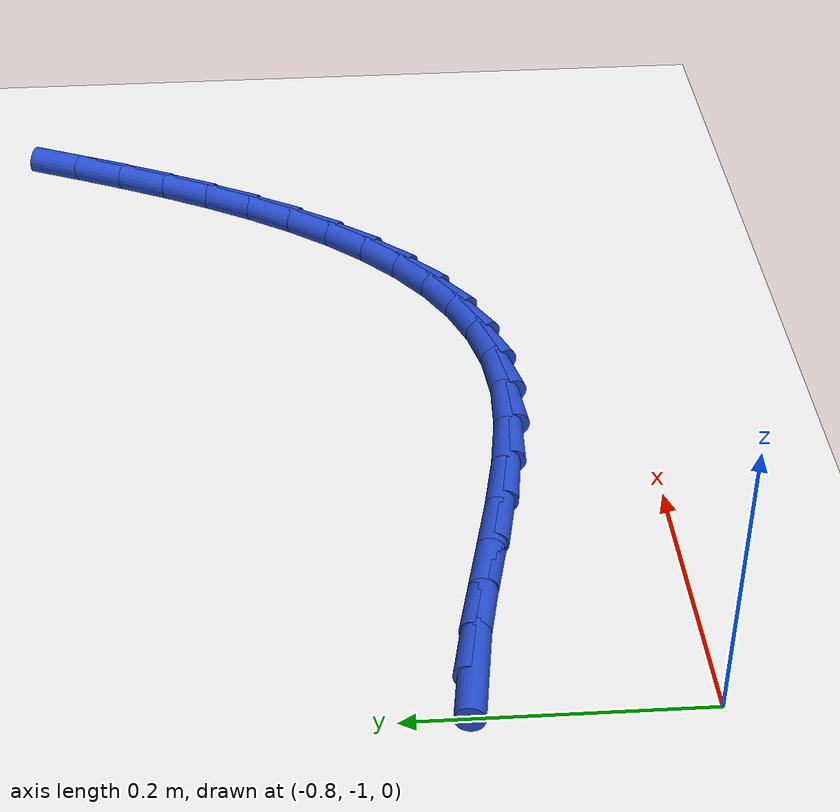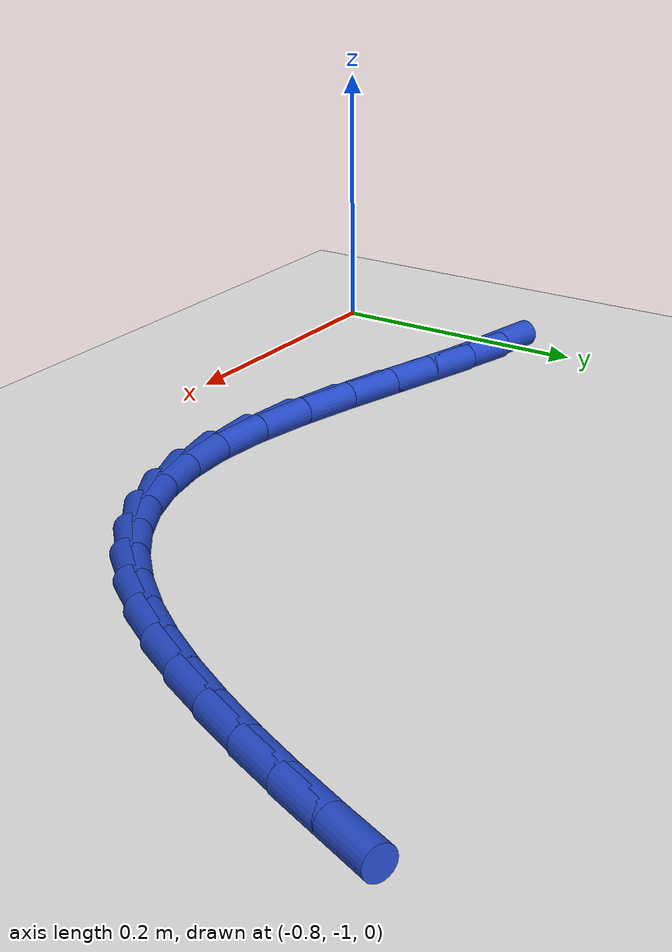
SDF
<sdf version="1.6">
 <world name="default">
  <model name="ground_plane">
   <static>1</static>
   <link name="link">
    <collision name="collision">
     <geometry><plane><normal>0 0 1</normal><size>100 100</size></plane></geometry>
     <surface><friction><ode><mu>100</mu><mu2>50</mu2></ode></friction></surface>
    </collision>
    <visual name="visual">
     <cast_shadows>0</cast_shadows>
     <geometry><plane><normal>0 0 1</normal><size>100 100</size></plane></geometry>
     <material>
      <script><uri>file://media/materials/scripts/gazebo.material</uri><name>Gazebo/WhiteGlow</name></script>
     </material>
    </visual>
   </link>
  </model>
  <model name="line">
   <link name="link_212">
    <pose>-0.7701526681092904 -0.8494848262905441 0.01 0 1.57 -0.16920156854607166</pose>
    <collision name="collision">
     <geometry><cylinder><radius>0.01</radius><length>0.08</length></cylinder></geometry>
    </collision>
    <visual name="visual">
     <material>
      <script><name>Gazebo/Blue</name><uri>file://media/materials/scripts/gazebo.material</uri></script>
     </material>
     <geometry><cylinder><radius>0.01</radius><length>0.08</length></cylinder></geometry>
    </visual>
   </link>
   <link name="link_213">
    <pose>-0.7355582392097252 -0.8553947647402865 0.01 0 1.57 -0.23301190495487067</pose>
    <collision name="collision">
     <geometry><cylinder><radius>0.01</radius><length>0.08</length></cylinder></geometry>
    </collision>
    <visual name="visual">
     <material>
      <script><name>Gazebo/Blue</name><uri>file://media/materials/scripts/gazebo.material</uri></script>
     </material>
     <geometry><cylinder><radius>0.01</radius><length>0.08</length></cylinder></geometry>
    </visual>
   </link>
   <link name="link_214">
    <pose>-0.6973186379509261 -0.8644698879022799 0.01 0 1.57 -0.2580358204950025</pose>
    <collision name="collision">
     <geometry><cylinder><radius>0.01</radius><length>0.08</length></cylinder></geometry>
    </collision>
    <visual name="visual">
     <material>
      <script><name>Gazebo/Blue</name><uri>file://media/materials/scripts/gazebo.material</uri></script>
     </material>
     <geometry><cylinder><radius>0.01</radius><length>0.08</length></cylinder></geometry>
    </visual>
   </link>
   <link name="link_215">
    <pose>-0.6565619927983498 -0.875226359596383 0.01 0 1.57 -0.2542822306742508</pose>
    <collision name="collision">
     <geometry><cylinder><radius>0.01</radius><length>0.08</length></cylinder></geometry>
    </collision>
    <visual name="visual">
     <material>
      <script><name>Gazebo/Blue</name><uri>file://media/materials/scripts/gazebo.material</uri></script>
     </material>
     <geometry><cylinder><radius>0.01</radius><length>0.08</length></cylinder></geometry>
    </visual>
   </link>
   <link name="link_216">
    <pose>-0.6144164322174529 -0.8861803436424556 0.01 0 1.57 -0.22414591912430792</pose>
    <collision name="collision">
     <geometry><cylinder><radius>0.01</radius><length>0.08</length></cylinder></geometry>
    </collision>
    <visual name="visual">
     <material>
      <script><name>Gazebo/Blue</name><uri>file://media/materials/scripts/gazebo.material</uri></script>
     </material>
     <geometry><cylinder><radius>0.01</radius><length>0.08</length></cylinder></geometry>
    </visual>
   </link>
   <link name="link_217">
    <pose>-0.5720100846736916 -0.8958480038603569 0.01 0 1.57 -0.16454740524326134</pose>
    <collision name="collision">
     <geometry><cylinder><radius>0.01</radius><length>0.08</length></cylinder></geometry>
    </collision>
    <visual name="visual">
     <material>
      <script><name>Gazebo/Blue</name><uri>file://media/materials/scripts/gazebo.material</uri></script>
     </material>
     <geometry><cylinder><radius>0.01</radius><length>0.08</length></cylinder></geometry>
    </visual>
   </link>
   <link name="link_218">
    <pose>-0.5304710786325221 -0.9027455040699452 0.01 0 1.57 -0.06680559689689824</pose>
    <collision name="collision">
     <geometry><cylinder><radius>0.01</radius><length>0.08</length></cylinder></geometry>
    </collision>
    <visual name="visual">
     <material>
      <script><name>Gazebo/Blue</name><uri>file://media/materials/scripts/gazebo.material</uri></script>
     </material>
     <geometry><cylinder><radius>0.01</radius><length>0.08</length></cylinder></geometry>
    </visual>
   </link>
   <link name="link_219">
    <pose>-0.49092597761092827 -0.9053912753345694 0.01 0 1.57 0.0695445088565975</pose>
    <collision name="collision">
     <geometry><cylinder><radius>0.01</radius><length>0.08</length></cylinder></geometry>
    </collision>
    <visual name="visual">
     <material>
      <script><name>Gazebo/Blue</name><uri>file://media/materials/scripts/gazebo.material</uri></script>
     </material>
     <geometry><cylinder><radius>0.01</radius><length>0.08</length></cylinder></geometry>
    </visual>
   </link>
   <link name="link_220">
    <pose>-0.4541389283609825 -0.9028288056537507 0.01 0 1.57 0.2174893307558721</pose>
    <collision name="collision">
     <geometry><cylinder><radius>0.01</radius><length>0.08</length></cylinder></geometry>
    </collision>
    <visual name="visual">
     <material>
      <script><name>Gazebo/Blue</name><uri>file://media/materials/scripts/gazebo.material</uri></script>
     </material>
     <geometry><cylinder><radius>0.01</radius><length>0.08</length></cylinder></geometry>
    </visual>
   </link>
   <link name="link_221">
    <pose>-0.420049882352467 -0.8952956487867307 0.01 0 1.57 0.3660902654327871</pose>
    <collision name="collision">
     <geometry><cylinder><radius>0.01</radius><length>0.08</length></cylinder></geometry>
    </collision>
    <visual name="visual">
     <material>
      <script><name>Gazebo/Blue</name><uri>file://media/materials/scripts/gazebo.material</uri></script>
     </material>
     <geometry><cylinder><radius>0.01</radius><length>0.08</length></cylinder></geometry>
    </visual>
   </link>
   <link name="link_222">
    <pose>-0.388484814258851 -0.8831944841526564 0.01 0 1.57 0.5080363166312418</pose>
    <collision name="collision">
     <geometry><cylinder><radius>0.01</radius><length>0.08</length></cylinder></geometry>
    </collision>
    <visual name="visual">
     <material>
      <script><name>Gazebo/Blue</name><uri>file://media/materials/scripts/gazebo.material</uri></script>
     </material>
     <geometry><cylinder><radius>0.01</radius><length>0.08</length></cylinder></geometry>
    </visual>
   </link>
   <link name="link_223">
    <pose>-0.3592696987536036 -0.8669279911706745 0.01 0 1.57 0.6375515105133961</pose>
    <collision name="collision">
     <geometry><cylinder><radius>0.01</radius><length>0.08</length></cylinder></geometry>
    </collision>
    <visual name="visual">
     <material>
      <script><name>Gazebo/Blue</name><uri>file://media/materials/scripts/gazebo.material</uri></script>
     </material>
     <geometry><cylinder><radius>0.01</radius><length>0.08</length></cylinder></geometry>
    </visual>
   </link>
   <link name="link_224">
    <pose>-0.3322305105101941 -0.846898849259933 0.01 0 1.57 0.7513766582767675</pose>
    <collision name="collision">
     <geometry><cylinder><radius>0.01</radius><length>0.08</length></cylinder></geometry>
    </collision>
    <visual name="visual">
     <material>
      <script><name>Gazebo/Blue</name><uri>file://media/materials/scripts/gazebo.material</uri></script>
     </material>
     <geometry><cylinder><radius>0.01</radius><length>0.08</length></cylinder></geometry>
    </visual>
   </link>
   <link name="link_225">
    <pose>-0.3071932242020915 -0.8235097378395787 0.01 0 1.57 0.8486160106927774</pose>
    <collision name="collision">
     <geometry><cylinder><radius>0.01</radius><length>0.08</length></cylinder></geometry>
    </collision>
    <visual name="visual">
     <material>
      <script><name>Gazebo/Blue</name><uri>file://media/materials/scripts/gazebo.material</uri></script>
     </material>
     <geometry><cylinder><radius>0.01</radius><length>0.08</length></cylinder></geometry>
    </visual>
   </link>
   <link name="link_226">
    <pose>-0.2839838145027651 -0.7971633363287587 0.01 0 1.57 0.9299623273769843</pose>
    <collision name="collision">
     <geometry><cylinder><radius>0.01</radius><length>0.08</length></cylinder></geometry>
    </collision>
    <visual name="visual">
     <material>
      <script><name>Gazebo/Blue</name><uri>file://media/materials/scripts/gazebo.material</uri></script>
     </material>
     <geometry><cylinder><radius>0.01</radius><length>0.08</length></cylinder></geometry>
    </visual>
   </link>
   <link name="link_227">
    <pose>-0.26242825608568404 -0.7682623241466201 0.01 0 1.57 0.9968853965569159</pose>
    <collision name="collision">
     <geometry><cylinder><radius>0.01</radius><length>0.08</length></cylinder></geometry>
    </collision>
    <visual name="visual">
     <material>
      <script><name>Gazebo/Blue</name><uri>file://media/materials/scripts/gazebo.material</uri></script>
     </material>
     <geometry><cylinder><radius>0.01</radius><length>0.08</length></cylinder></geometry>
    </visual>
   </link>
   <link name="link_228">
    <pose>-0.24235252362431767 -0.7372093807123107 0.01 0 1.57 1.0510570236911017</pose>
    <collision name="collision">
     <geometry><cylinder><radius>0.01</radius><length>0.08</length></cylinder></geometry>
    </collision>
    <visual name="visual">
     <material>
      <script><name>Gazebo/Blue</name><uri>file://media/materials/scripts/gazebo.material</uri></script>
     </material>
     <geometry><cylinder><radius>0.01</radius><length>0.08</length></cylinder></geometry>
    </visual>
   </link>
   <link name="link_229">
    <pose>-0.2235825917921349 -0.7044071854449769 0.01 0 1.57 1.0940286665635737</pose>
    <collision name="collision">
     <geometry><cylinder><radius>0.01</radius><length>0.08</length></cylinder></geometry>
    </collision>
    <visual name="visual">
     <material>
      <script><name>Gazebo/Blue</name><uri>file://media/materials/scripts/gazebo.material</uri></script>
     </material>
     <geometry><cylinder><radius>0.01</radius><length>0.08</length></cylinder></geometry>
    </visual>
   </link>
   <link name="link_230">
    <pose>-0.20594443526260517 -0.6702584177637665 0.01 0 1.57 1.1270831407658533</pose>
    <collision name="collision">
     <geometry><cylinder><radius>0.01</radius><length>0.08</length></cylinder></geometry>
    </collision>
    <visual name="visual">
     <material>
      <script><name>Gazebo/Blue</name><uri>file://media/materials/scripts/gazebo.material</uri></script>
     </material>
     <geometry><cylinder><radius>0.01</radius><length>0.08</length></cylinder></geometry>
    </visual>
   </link>
   <link name="link_231">
    <pose>-0.18926402870919756 -0.6351657570878269 0.01 0 1.57 1.151180762567151</pose>
    <collision name="collision">
     <geometry><cylinder><radius>0.01</radius><length>0.08</length></cylinder></geometry>
    </collision>
    <visual name="visual">
     <material>
      <script><name>Gazebo/Blue</name><uri>file://media/materials/scripts/gazebo.material</uri></script>
     </material>
     <geometry><cylinder><radius>0.01</radius><length>0.08</length></cylinder></geometry>
    </visual>
   </link>
   <link name="link_232">
    <pose>-0.17336734680538124 -0.5995318828363048 0.01 0 1.57 1.1669453118672806</pose>
    <collision name="collision">
     <geometry><cylinder><radius>0.01</radius><length>0.08</length></cylinder></geometry>
    </collision>
    <visual name="visual">
     <material>
      <script><name>Gazebo/Blue</name><uri>file://media/materials/scripts/gazebo.material</uri></script>
     </material>
     <geometry><cylinder><radius>0.01</radius><length>0.08</length></cylinder></geometry>
    </visual>
   </link>
  </model>
 </world>
</sdf>
